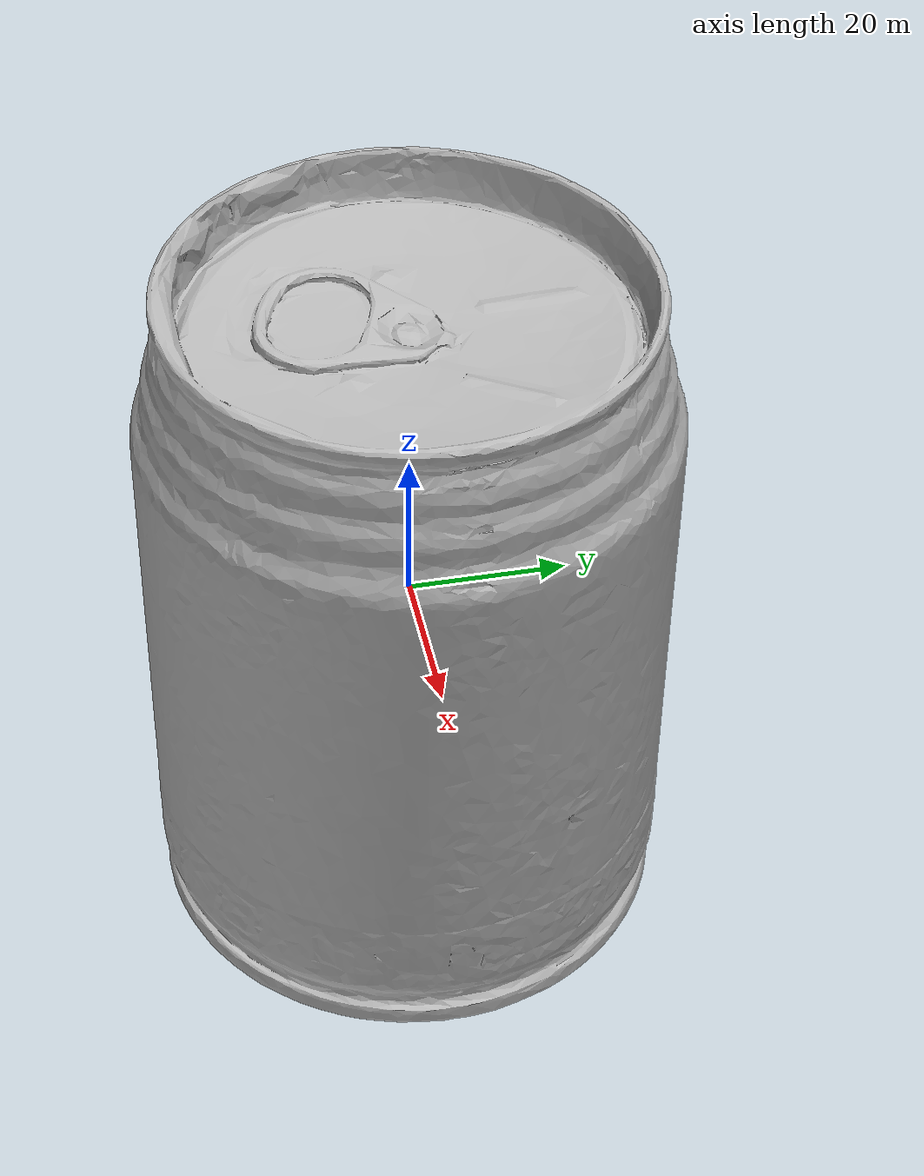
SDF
<sdf version="1.4">
 <world name="default">
  <light name="light1" type="point">
   <pose>0 0 1 0 0 0</pose>
   <diffuse>3 3 3 1</diffuse>
   <specular>3 3 3 1</specular>
  </light>
  <light name="light2" type="point">
   <pose>0 0.5 2 0 0 0</pose>
   <diffuse>1 1 1 1</diffuse>
   <specular>1 1 1 1</specular>
  </light>
  <light name="light3" type="point">
   <pose>0 0.5 2 0 0 0</pose>
   <diffuse>3 3 3 1</diffuse>
   <specular>3 3 3 1</specular>
  </light>
  <scene><ambient>0.7 0.7 0.7</ambient></scene>
  <model name="box1">
   <link name="link_box1">
    <collision name="default">
     <geometry>
      <mesh><uri>model://wooden_puzzle1/collision_meshes/collision.obj</uri><scale>1.0 1.0 1.0</scale></mesh>
     </geometry>
     <surface>
      <friction><ode><mu>0.5</mu><mu2>0.5</mu2></ode></friction>
      <contact><ode><max_vel>0</max_vel><min_depth>0.0001</min_depth><kp>1e8</kp></ode></contact>
     </surface>
    </collision>
    <visual name="default">
     <geometry>
      <mesh><uri>model://wooden_puzzle1/visual_meshes/visual.dae</uri><scale>1.0 1.0 1.0</scale></mesh>
     </geometry>
    </visual>
    <inertial>
     <mass>0.025116289034485817</mass>
     <pose>-0.00017350679263472557 7.972260937094688e-05 -9.191555000143126e-05 -0.07784885804399136 -0.2636065522190298 -0.5528757227143044</pose>
     <inertia>
      <ixx>4.7387575e-06</ixx>
      <iyy>4.647534e-06</iyy>
      <izz>4.7029785e-06</izz>
      <ixy>0</ixy>
      <ixz>0</ixz>
      <iyz>0</iyz>
     </inertia>
    </inertial>
   </link>
   <pose>0.1948016881942749 -0.08875911682844162 0.016802016645669937 0.010511580807612372 -0.009453991826336116 -2.1570368086585736</pose>
  </model>
  <model name="box3">
   <link name="link_box3">
    <collision name="default">
     <geometry>
      <mesh><uri>model://wooden_puzzle2/collision_meshes/collision.obj</uri><scale>1.0 1.0 1.0</scale></mesh>
     </geometry>
     <surface>
      <friction><ode><mu>0.5</mu><mu2>0.5</mu2></ode></friction>
      <contact><ode><max_vel>0</max_vel><min_depth>0.0001</min_depth><kp>1e8</kp></ode></contact>
     </surface>
    </collision>
    <visual name="default">
     <geometry>
      <mesh><uri>model://wooden_puzzle2/visual_meshes/visual.dae</uri><scale>1.0 1.0 1.0</scale></mesh>
     </geometry>
    </visual>
    <inertial>
     <mass>0.025376593694090843</mass>
     <pose>2.7402536943554878e-05 4.997663199901581e-05 6.587122334167361e-05 -0.1920355258808483 0.6112750807505014 -0.6338716229052327</pose>
     <inertia>
      <ixx>4.7172375e-06</ixx>
      <iyy>4.8472266e-06</iyy>
      <izz>4.778271e-06</izz>
      <ixy>0</ixy>
      <ixz>0</ixz>
      <iyz>0</iyz>
     </inertia>
    </inertial>
   </link>
   <pose>0.1099533662199974 0.3018834888935089 0.01691773161292076 0.020848561977612267 0.0007209132595602253 1.88207103896215</pose>
  </model>
  <model name="can1">
   <link name="link_can1">
    <collision name="default">
     <geometry>
      <mesh><uri>model://redbull/collision_meshes/collision.obj</uri><scale>1.0 1.0 1.0</scale></mesh>
     </geometry>
     <surface>
      <friction><ode><mu>0.5</mu><mu2>0.5</mu2></ode></friction>
      <contact><ode><max_vel>0</max_vel><min_depth>0.0001</min_depth><kp>1e8</kp></ode></contact>
     </surface>
    </collision>
    <visual name="default">
     <geometry>
      <mesh><uri>model://redbull/visual_meshes/visual.dae</uri><scale>1.0 1.0 1.0</scale></mesh>
     </geometry>
    </visual>
    <inertial>
     <mass>0.2544018626213074</mass>
     <pose>-2.2126756448415108e-05 -0.0001265947794308886 -0.0006860987632535398 0.0011376600102847077 -0.01080087162846833 0.5858227764205248</pose>
     <inertia>
      <ixx>0.00023919248</ixx>
      <iyy>0.00023939437</iyy>
      <izz>0.00014194298</izz>
      <ixy>0</ixy>
      <ixz>0</ixz>
      <iyz>0</iyz>
     </inertia>
    </inertial>
   </link>
   <pose>0.26725348830223083 -0.019600486382842064 0.04638564586639404 -0.010489860378109403 0.007260689063833797 0.04540444749427147</pose>
  </model>
  <model name="can2">
   <link name="link_can2">
    <collision name="default">
     <geometry>
      <mesh><uri>model://pepsi/collision_meshes/collision.obj</uri><scale>1.0 1.0 1.0</scale></mesh>
     </geometry>
     <surface>
      <friction><ode><mu>0.5</mu><mu2>0.5</mu2></ode></friction>
      <contact><ode><max_vel>0</max_vel><min_depth>0.0001</min_depth><kp>1e8</kp></ode></contact>
     </surface>
    </collision>
    <visual name="default">
     <geometry><mesh><uri>model://pepsi/visual_meshes/visual.dae</uri><scale>1.0 1.0 1.0</scale></mesh></geometry>
    </visual>
    <inertial>
     <mass>0.4552207291126251</mass>
     <pose>-7.5590331107378e-05 2.99312814604491e-05 -0.0003384356095921248 -0.0010679690801074441 -0.0021734768369219134 0.5674650232372158</pose>
     <inertia>
      <ixx>0.0009068869</ixx>
      <iyy>0.0009062263</iyy>
      <izz>0.00019301806</izz>
      <ixy>0</ixy>
      <ixz>0</ixz>
      <iyz>0</iyz>
     </inertia>
    </inertial>
   </link>
   <pose>0.1496228575706482 -0.12368177622556686 0.0744963139295578 -1.9167258978600017e-05 2.1596590313933354e-06 3.1138174260645046</pose>
  </model>
  <physics type="ode">
   <max_contacts>50</max_contacts>
   <ode>
    <solver><type>quick</type><iters>75</iters></solver>
    <constraints>
     <contact_max_correcting_vel>0</contact_max_correcting_vel>
     <contact_surface_layer>0</contact_surface_layer>
    </constraints>
   </ode>
  </physics>
 </world>
</sdf>
